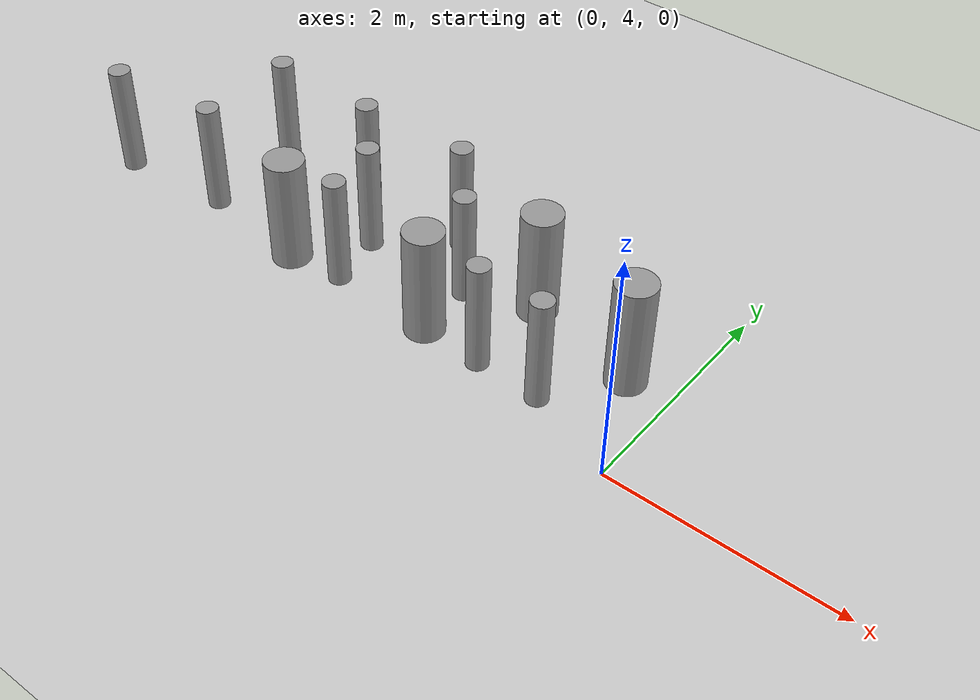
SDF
<sdf version="1.6">
 <world name="default">
  <model name="ground_plane">
   <static>1</static>
   <link name="link">
    <collision name="collision">
     <geometry><plane><normal>0 0 1</normal><size>100 100</size></plane></geometry>
     <surface><friction><ode><mu>100</mu><mu2>50</mu2></ode></friction></surface>
    </collision>
    <visual name="visual">
     <cast_shadows>0</cast_shadows>
     <geometry><plane><normal>0 0 1</normal><size>100 100</size></plane></geometry>
     <material>
      <script><uri>file://media/materials/scripts/gazebo.material</uri><name>Gazebo/Grey</name></script>
     </material>
    </visual>
   </link>
  </model>
  <model name="cyl_wall_clone_clone_3_clone_2_clone">
   <link name="link_0">
    <pose>-2.73893 -0.366465 0 0 -0 0</pose>
    <inertial>
     <mass>0.0374993</mass>
     <inertia>
      <ixx>0.00321281</ixx>
      <ixy>0</ixy>
      <ixz>0</ixz>
      <iyy>0.00321281</iyy>
      <iyz>0</iyz>
      <izz>0.000175774</izz>
     </inertia>
    </inertial>
    <visual name="visual">
     <geometry><cylinder><radius>0.0968661</radius><length>1</length></cylinder></geometry>
     <material>
      <lighting>1</lighting>
      <script><uri>file://media/materials/scripts/gazebo.material</uri><name>Gazebo/Grey</name></script>
      <ambient>0.3 0.3 0.3 1</ambient>
      <diffuse>0.7 0.7 0.7 1</diffuse>
      <specular>0.01 0.01 0.01 1</specular>
      <emissive>0 0 0 1</emissive>
     </material>
    </visual>
    <collision name="collision">
     <geometry><cylinder><radius>0.096866</radius><length>1</length></cylinder></geometry>
     <surface>
      <friction>
       <ode><mu>1</mu><mu2>1</mu2><fdir1>0 0 0</fdir1><slip1>0</slip1><slip2>0</slip2></ode>
       <torsional>
        <coefficient>1</coefficient>
        <patch_radius>0</patch_radius>
        <surface_radius>0</surface_radius>
        <use_patch_radius>1</use_patch_radius>
        <ode><slip>0</slip></ode>
       </torsional>
      </friction>
      <bounce><restitution_coefficient>0</restitution_coefficient><threshold>1e+06</threshold></bounce>
      <contact>
       <collide_without_contact>0</collide_without_contact>
       <collide_without_contact_bitmask>1</collide_without_contact_bitmask>
       <collide_bitmask>1</collide_bitmask>
       <ode>
        <soft_cfm>0</soft_cfm>
        <soft_erp>0.2</soft_erp>
        <kp>1e+13</kp>
        <kd>1</kd>
        <max_vel>0.01</max_vel>
        <min_depth>0</min_depth>
       </ode>
       <bullet>
        <split_impulse>1</split_impulse>
        <split_impulse_penetration_threshold>-0.01</split_impulse_penetration_threshold>
        <soft_cfm>0</soft_cfm>
        <soft_erp>0.2</soft_erp>
        <kp>1e+13</kp>
        <kd>1</kd>
       </bullet>
      </contact>
     </surface>
    </collision>
   </link>
   <link name="link_0_clone">
    <pose>-1.73893 0.61877 0 0 -0 0</pose>
    <inertial>
     <mass>0.0374993</mass>
     <inertia>
      <ixx>0.00321281</ixx>
      <ixy>0</ixy>
      <ixz>0</ixz>
      <iyy>0.00321281</iyy>
      <iyz>0</iyz>
      <izz>0.000175774</izz>
     </inertia>
    </inertial>
    <visual name="visual">
     <geometry><cylinder><radius>0.0968661</radius><length>1</length></cylinder></geometry>
     <material>
      <lighting>1</lighting>
      <script><uri>file://media/materials/scripts/gazebo.material</uri><name>Gazebo/Grey</name></script>
      <ambient>0.3 0.3 0.3 1</ambient>
      <diffuse>0.7 0.7 0.7 1</diffuse>
      <specular>0.01 0.01 0.01 1</specular>
      <emissive>0 0 0 1</emissive>
      <shader type="pixel"/>
     </material>
    </visual>
    <collision name="collision">
     <geometry><cylinder><radius>0.096866</radius><length>1</length></cylinder></geometry>
     <surface>
      <friction>
       <ode><mu>1</mu><mu2>1</mu2><fdir1>0 0 0</fdir1><slip1>0</slip1><slip2>0</slip2></ode>
       <torsional>
        <coefficient>1</coefficient>
        <patch_radius>0</patch_radius>
        <surface_radius>0</surface_radius>
        <use_patch_radius>1</use_patch_radius>
        <ode><slip>0</slip></ode>
       </torsional>
      </friction>
      <bounce><restitution_coefficient>0</restitution_coefficient><threshold>1e+06</threshold></bounce>
      <contact>
       <collide_without_contact>0</collide_without_contact>
       <collide_without_contact_bitmask>1</collide_without_contact_bitmask>
       <collide_bitmask>1</collide_bitmask>
       <ode>
        <soft_cfm>0</soft_cfm>
        <soft_erp>0.2</soft_erp>
        <kp>1e+13</kp>
        <kd>1</kd>
        <max_vel>0.01</max_vel>
        <min_depth>0</min_depth>
       </ode>
       <bullet>
        <split_impulse>1</split_impulse>
        <split_impulse_penetration_threshold>-0.01</split_impulse_penetration_threshold>
        <soft_cfm>0</soft_cfm>
        <soft_erp>0.2</soft_erp>
        <kp>1e+13</kp>
        <kd>1</kd>
       </bullet>
      </contact>
     </surface>
    </collision>
   </link>
   <link name="link_0_clone_clone">
    <pose>-0.327073 0.143919 0 0 -0 0</pose>
    <inertial>
     <mass>0.0374993</mass>
     <inertia>
      <ixx>0.00321281</ixx>
      <ixy>0</ixy>
      <ixz>0</ixz>
      <iyy>0.00321281</iyy>
      <iyz>0</iyz>
      <izz>0.000175774</izz>
     </inertia>
    </inertial>
    <visual name="visual">
     <geometry><cylinder><radius>0.0968661</radius><length>1</length></cylinder></geometry>
     <material>
      <lighting>1</lighting>
      <script><uri>file://media/materials/scripts/gazebo.material</uri><name>Gazebo/Grey</name></script>
      <ambient>0.3 0.3 0.3 1</ambient>
      <diffuse>0.7 0.7 0.7 1</diffuse>
      <specular>0.01 0.01 0.01 1</specular>
      <emissive>0 0 0 1</emissive>
      <shader type="pixel"/>
     </material>
    </visual>
    <collision name="collision">
     <geometry><cylinder><radius>0.096866</radius><length>1</length></cylinder></geometry>
     <surface>
      <friction>
       <ode><mu>1</mu><mu2>1</mu2><fdir1>0 0 0</fdir1><slip1>0</slip1><slip2>0</slip2></ode>
       <torsional>
        <coefficient>1</coefficient>
        <patch_radius>0</patch_radius>
        <surface_radius>0</surface_radius>
        <use_patch_radius>1</use_patch_radius>
        <ode><slip>0</slip></ode>
       </torsional>
      </friction>
      <bounce><restitution_coefficient>0</restitution_coefficient><threshold>1e+06</threshold></bounce>
      <contact>
       <collide_without_contact>0</collide_without_contact>
       <collide_without_contact_bitmask>1</collide_without_contact_bitmask>
       <collide_bitmask>1</collide_bitmask>
       <ode>
        <soft_cfm>0</soft_cfm>
        <soft_erp>0.2</soft_erp>
        <kp>1e+13</kp>
        <kd>1</kd>
        <max_vel>0.01</max_vel>
        <min_depth>0</min_depth>
       </ode>
       <bullet>
        <split_impulse>1</split_impulse>
        <split_impulse_penetration_threshold>-0.01</split_impulse_penetration_threshold>
        <soft_cfm>0</soft_cfm>
        <soft_erp>0.2</soft_erp>
        <kp>1e+13</kp>
        <kd>1</kd>
       </bullet>
      </contact>
     </surface>
    </collision>
   </link>
   <link name="link_0_clone_clone_0">
    <pose>1.26107 -0.419359 0 0 -0 0</pose>
    <inertial>
     <mass>0.0374993</mass>
     <inertia>
      <ixx>0.00321281</ixx>
      <ixy>0</ixy>
      <ixz>0</ixz>
      <iyy>0.00321281</iyy>
      <iyz>0</iyz>
      <izz>0.000175774</izz>
     </inertia>
    </inertial>
    <visual name="visual">
     <geometry><cylinder><radius>0.0968661</radius><length>1</length></cylinder></geometry>
     <material>
      <lighting>1</lighting>
      <script><uri>file://media/materials/scripts/gazebo.material</uri><name>Gazebo/Grey</name></script>
      <ambient>0.3 0.3 0.3 1</ambient>
      <diffuse>0.7 0.7 0.7 1</diffuse>
      <specular>0.01 0.01 0.01 1</specular>
      <emissive>0 0 0 1</emissive>
      <shader type="pixel"/>
     </material>
    </visual>
    <collision name="collision">
     <geometry><cylinder><radius>0.096866</radius><length>1</length></cylinder></geometry>
     <surface>
      <friction>
       <ode><mu>1</mu><mu2>1</mu2><fdir1>0 0 0</fdir1><slip1>0</slip1><slip2>0</slip2></ode>
       <torsional>
        <coefficient>1</coefficient>
        <patch_radius>0</patch_radius>
        <surface_radius>0</surface_radius>
        <use_patch_radius>1</use_patch_radius>
        <ode><slip>0</slip></ode>
       </torsional>
      </friction>
      <bounce><restitution_coefficient>0</restitution_coefficient><threshold>1e+06</threshold></bounce>
      <contact>
       <collide_without_contact>0</collide_without_contact>
       <collide_without_contact_bitmask>1</collide_without_contact_bitmask>
       <collide_bitmask>1</collide_bitmask>
       <ode>
        <soft_cfm>0</soft_cfm>
        <soft_erp>0.2</soft_erp>
        <kp>1e+13</kp>
        <kd>1</kd>
        <max_vel>0.01</max_vel>
        <min_depth>0</min_depth>
       </ode>
       <bullet>
        <split_impulse>1</split_impulse>
        <split_impulse_penetration_threshold>-0.01</split_impulse_penetration_threshold>
        <soft_cfm>0</soft_cfm>
        <soft_erp>0.2</soft_erp>
        <kp>1e+13</kp>
        <kd>1</kd>
       </bullet>
      </contact>
     </surface>
    </collision>
   </link>
   <link name="link_0_clone_clone_1">
    <pose>-1.73893 -0.277168 0 0 -0 0</pose>
    <inertial>
     <mass>0.0374993</mass>
     <inertia>
      <ixx>0.00321281</ixx>
      <ixy>0</ixy>
      <ixz>0</ixz>
      <iyy>0.00321281</iyy>
      <iyz>0</iyz>
      <izz>0.000175774</izz>
     </inertia>
    </inertial>
    <visual name="visual">
     <geometry><cylinder><radius>0.0968661</radius><length>1</length></cylinder></geometry>
     <material>
      <lighting>1</lighting>
      <script><uri>file://media/materials/scripts/gazebo.material</uri><name>Gazebo/Grey</name></script>
      <ambient>0.3 0.3 0.3 1</ambient>
      <diffuse>0.7 0.7 0.7 1</diffuse>
      <specular>0.01 0.01 0.01 1</specular>
      <emissive>0 0 0 1</emissive>
      <shader type="pixel"/>
     </material>
    </visual>
    <collision name="collision">
     <geometry><cylinder><radius>0.096866</radius><length>1</length></cylinder></geometry>
     <surface>
      <friction>
       <ode><mu>1</mu><mu2>1</mu2><fdir1>0 0 0</fdir1><slip1>0</slip1><slip2>0</slip2></ode>
       <torsional>
        <coefficient>1</coefficient>
        <patch_radius>0</patch_radius>
        <surface_radius>0</surface_radius>
        <use_patch_radius>1</use_patch_radius>
        <ode><slip>0</slip></ode>
       </torsional>
      </friction>
      <bounce><restitution_coefficient>0</restitution_coefficient><threshold>1e+06</threshold></bounce>
      <contact>
       <collide_without_contact>0</collide_without_contact>
       <collide_without_contact_bitmask>1</collide_without_contact_bitmask>
       <collide_bitmask>1</collide_bitmask>
       <ode>
        <soft_cfm>0</soft_cfm>
        <soft_erp>0.2</soft_erp>
        <kp>1e+13</kp>
        <kd>1</kd>
        <max_vel>0.01</max_vel>
        <min_depth>0</min_depth>
       </ode>
       <bullet>
        <split_impulse>1</split_impulse>
        <split_impulse_penetration_threshold>-0.01</split_impulse_penetration_threshold>
        <soft_cfm>0</soft_cfm>
        <soft_erp>0.2</soft_erp>
        <kp>1e+13</kp>
        <kd>1</kd>
       </bullet>
      </contact>
     </surface>
    </collision>
   </link>
   <link name="link_0_clone_clone_2">
    <pose>-0.738934 0.593961 0 0 -0 0</pose>
    <inertial>
     <mass>0.0374993</mass>
     <inertia>
      <ixx>0.00321281</ixx>
      <ixy>0</ixy>
      <ixz>0</ixz>
      <iyy>0.00321281</iyy>
      <iyz>0</iyz>
      <izz>0.000175774</izz>
     </inertia>
    </inertial>
    <visual name="visual">
     <geometry><cylinder><radius>0.0968661</radius><length>1</length></cylinder></geometry>
     <material>
      <lighting>1</lighting>
      <script><uri>file://media/materials/scripts/gazebo.material</uri><name>Gazebo/Grey</name></script>
      <ambient>0.3 0.3 0.3 1</ambient>
      <diffuse>0.7 0.7 0.7 1</diffuse>
      <specular>0.01 0.01 0.01 1</specular>
      <emissive>0 0 0 1</emissive>
      <shader type="pixel"/>
     </material>
    </visual>
    <collision name="collision">
     <geometry><cylinder><radius>0.096866</radius><length>1</length></cylinder></geometry>
     <surface>
      <friction>
       <ode><mu>1</mu><mu2>1</mu2><fdir1>0 0 0</fdir1><slip1>0</slip1><slip2>0</slip2></ode>
       <torsional>
        <coefficient>1</coefficient>
        <patch_radius>0</patch_radius>
        <surface_radius>0</surface_radius>
        <use_patch_radius>1</use_patch_radius>
        <ode><slip>0</slip></ode>
       </torsional>
      </friction>
      <bounce><restitution_coefficient>0</restitution_coefficient><threshold>1e+06</threshold></bounce>
      <contact>
       <collide_without_contact>0</collide_without_contact>
       <collide_without_contact_bitmask>1</collide_without_contact_bitmask>
       <collide_bitmask>1</collide_bitmask>
       <ode>
        <soft_cfm>0</soft_cfm>
        <soft_erp>0.2</soft_erp>
        <kp>1e+13</kp>
        <kd>1</kd>
        <max_vel>0.01</max_vel>
        <min_depth>0</min_depth>
       </ode>
       <bullet>
        <split_impulse>1</split_impulse>
        <split_impulse_penetration_threshold>-0.01</split_impulse_penetration_threshold>
        <soft_cfm>0</soft_cfm>
        <soft_erp>0.2</soft_erp>
        <kp>1e+13</kp>
        <kd>1</kd>
       </bullet>
      </contact>
     </surface>
    </collision>
   </link>
   <link name="link_0_clone_clone_3">
    <pose>0.261066 0.624849 0 0 -0 0</pose>
    <inertial>
     <mass>0.0374993</mass>
     <inertia>
      <ixx>0.00321281</ixx>
      <ixy>0</ixy>
      <ixz>0</ixz>
      <iyy>0.00321281</iyy>
      <iyz>0</iyz>
      <izz>0.000175774</izz>
     </inertia>
    </inertial>
    <visual name="visual">
     <geometry><cylinder><radius>0.0968661</radius><length>1</length></cylinder></geometry>
     <material>
      <lighting>1</lighting>
      <script><uri>file://media/materials/scripts/gazebo.material</uri><name>Gazebo/Grey</name></script>
      <ambient>0.3 0.3 0.3 1</ambient>
      <diffuse>0.7 0.7 0.7 1</diffuse>
      <specular>0.01 0.01 0.01 1</specular>
      <emissive>0 0 0 1</emissive>
      <shader type="pixel"/>
     </material>
    </visual>
    <collision name="collision">
     <geometry><cylinder><radius>0.096866</radius><length>1</length></cylinder></geometry>
     <surface>
      <friction>
       <ode><mu>1</mu><mu2>1</mu2><fdir1>0 0 0</fdir1><slip1>0</slip1><slip2>0</slip2></ode>
       <torsional>
        <coefficient>1</coefficient>
        <patch_radius>0</patch_radius>
        <surface_radius>0</surface_radius>
        <use_patch_radius>1</use_patch_radius>
        <ode><slip>0</slip></ode>
       </torsional>
      </friction>
      <bounce><restitution_coefficient>0</restitution_coefficient><threshold>1e+06</threshold></bounce>
      <contact>
       <collide_without_contact>0</collide_without_contact>
       <collide_without_contact_bitmask>1</collide_without_contact_bitmask>
       <collide_bitmask>1</collide_bitmask>
       <ode>
        <soft_cfm>0</soft_cfm>
        <soft_erp>0.2</soft_erp>
        <kp>1e+13</kp>
        <kd>1</kd>
        <max_vel>0.01</max_vel>
        <min_depth>0</min_depth>
       </ode>
       <bullet>
        <split_impulse>1</split_impulse>
        <split_impulse_penetration_threshold>-0.01</split_impulse_penetration_threshold>
        <soft_cfm>0</soft_cfm>
        <soft_erp>0.2</soft_erp>
        <kp>1e+13</kp>
        <kd>1</kd>
       </bullet>
      </contact>
     </surface>
    </collision>
   </link>
   <link name="link_0_clone_clone_4">
    <pose>-0.239049 -0.353105 0 0 -0 0</pose>
    <inertial>
     <mass>0.0374993</mass>
     <inertia>
      <ixx>0.00321281</ixx>
      <ixy>0</ixy>
      <ixz>0</ixz>
      <iyy>0.00321281</iyy>
      <iyz>0</iyz>
      <izz>0.000175774</izz>
     </inertia>
    </inertial>
    <visual name="visual">
     <geometry><cylinder><radius>0.0968661</radius><length>1</length></cylinder></geometry>
     <material>
      <lighting>1</lighting>
      <script><uri>file://media/materials/scripts/gazebo.material</uri><name>Gazebo/Grey</name></script>
      <ambient>0.3 0.3 0.3 1</ambient>
      <diffuse>0.7 0.7 0.7 1</diffuse>
      <specular>0.01 0.01 0.01 1</specular>
      <emissive>0 0 0 1</emissive>
      <shader type="pixel"/>
     </material>
    </visual>
    <collision name="collision">
     <geometry><cylinder><radius>0.096866</radius><length>1</length></cylinder></geometry>
     <surface>
      <friction>
       <ode><mu>1</mu><mu2>1</mu2><fdir1>0 0 0</fdir1><slip1>0</slip1><slip2>0</slip2></ode>
       <torsional>
        <coefficient>1</coefficient>
        <patch_radius>0</patch_radius>
        <surface_radius>0</surface_radius>
        <use_patch_radius>1</use_patch_radius>
        <ode><slip>0</slip></ode>
       </torsional>
      </friction>
      <bounce><restitution_coefficient>0</restitution_coefficient><threshold>1e+06</threshold></bounce>
      <contact>
       <collide_without_contact>0</collide_without_contact>
       <collide_without_contact_bitmask>1</collide_without_contact_bitmask>
       <collide_bitmask>1</collide_bitmask>
       <ode>
        <soft_cfm>0</soft_cfm>
        <soft_erp>0.2</soft_erp>
        <kp>1e+13</kp>
        <kd>1</kd>
        <max_vel>0.01</max_vel>
        <min_depth>0</min_depth>
       </ode>
       <bullet>
        <split_impulse>1</split_impulse>
        <split_impulse_penetration_threshold>-0.01</split_impulse_penetration_threshold>
        <soft_cfm>0</soft_cfm>
        <soft_erp>0.2</soft_erp>
        <kp>1e+13</kp>
        <kd>1</kd>
       </bullet>
      </contact>
     </surface>
    </collision>
   </link>
   <link name="link_0_clone_clone_5">
    <pose>0.672792 0.143919 0 0 -0 0</pose>
    <inertial>
     <mass>0.0374993</mass>
     <inertia>
      <ixx>0.00321281</ixx>
      <ixy>0</ixy>
      <ixz>0</ixz>
      <iyy>0.00321281</iyy>
      <iyz>0</iyz>
      <izz>0.000175774</izz>
     </inertia>
    </inertial>
    <visual name="visual">
     <geometry><cylinder><radius>0.0968661</radius><length>1</length></cylinder></geometry>
     <material>
      <lighting>1</lighting>
      <script><uri>file://media/materials/scripts/gazebo.material</uri><name>Gazebo/Grey</name></script>
      <ambient>0.3 0.3 0.3 1</ambient>
      <diffuse>0.7 0.7 0.7 1</diffuse>
      <specular>0.01 0.01 0.01 1</specular>
      <emissive>0 0 0 1</emissive>
      <shader type="pixel"/>
     </material>
    </visual>
    <collision name="collision">
     <geometry><cylinder><radius>0.096866</radius><length>1</length></cylinder></geometry>
     <surface>
      <friction>
       <ode><mu>1</mu><mu2>1</mu2><fdir1>0 0 0</fdir1><slip1>0</slip1><slip2>0</slip2></ode>
       <torsional>
        <coefficient>1</coefficient>
        <patch_radius>0</patch_radius>
        <surface_radius>0</surface_radius>
        <use_patch_radius>1</use_patch_radius>
        <ode><slip>0</slip></ode>
       </torsional>
      </friction>
      <bounce><restitution_coefficient>0</restitution_coefficient><threshold>1e+06</threshold></bounce>
      <contact>
       <collide_without_contact>0</collide_without_contact>
       <collide_without_contact_bitmask>1</collide_without_contact_bitmask>
       <collide_bitmask>1</collide_bitmask>
       <ode>
        <soft_cfm>0</soft_cfm>
        <soft_erp>0.2</soft_erp>
        <kp>1e+13</kp>
        <kd>1</kd>
        <max_vel>0.01</max_vel>
        <min_depth>0</min_depth>
       </ode>
       <bullet>
        <split_impulse>1</split_impulse>
        <split_impulse_penetration_threshold>-0.01</split_impulse_penetration_threshold>
        <soft_cfm>0</soft_cfm>
        <soft_erp>0.2</soft_erp>
        <kp>1e+13</kp>
        <kd>1</kd>
       </bullet>
      </contact>
     </surface>
    </collision>
   </link>
   <link name="link_0_clone_clone_6">
    <pose>1.84596 -0.433423 0 0 -0 0</pose>
    <inertial>
     <mass>0.0374993</mass>
     <inertia>
      <ixx>0.00321281</ixx>
      <ixy>0</ixy>
      <ixz>0</ixz>
      <iyy>0.00321281</iyy>
      <iyz>0</iyz>
      <izz>0.000175774</izz>
     </inertia>
    </inertial>
    <visual name="visual">
     <geometry><cylinder><radius>0.0968661</radius><length>1</length></cylinder></geometry>
     <material>
      <lighting>1</lighting>
      <script><uri>file://media/materials/scripts/gazebo.material</uri><name>Gazebo/Grey</name></script>
      <ambient>0.3 0.3 0.3 1</ambient>
      <diffuse>0.7 0.7 0.7 1</diffuse>
      <specular>0.01 0.01 0.01 1</specular>
      <emissive>0 0 0 1</emissive>
      <shader type="pixel"/>
     </material>
    </visual>
    <collision name="collision">
     <geometry><cylinder><radius>0.096866</radius><length>1</length></cylinder></geometry>
     <surface>
      <friction>
       <ode><mu>1</mu><mu2>1</mu2><fdir1>0 0 0</fdir1><slip1>0</slip1><slip2>0</slip2></ode>
       <torsional>
        <coefficient>1</coefficient>
        <patch_radius>0</patch_radius>
        <surface_radius>0</surface_radius>
        <use_patch_radius>1</use_patch_radius>
        <ode><slip>0</slip></ode>
       </torsional>
      </friction>
      <bounce><restitution_coefficient>0</restitution_coefficient><threshold>1e+06</threshold></bounce>
      <contact>
       <collide_without_contact>0</collide_without_contact>
       <collide_without_contact_bitmask>1</collide_without_contact_bitmask>
       <collide_bitmask>1</collide_bitmask>
       <ode>
        <soft_cfm>0</soft_cfm>
        <soft_erp>0.2</soft_erp>
        <kp>1e+13</kp>
        <kd>1</kd>
        <max_vel>0.01</max_vel>
        <min_depth>0</min_depth>
       </ode>
       <bullet>
        <split_impulse>1</split_impulse>
        <split_impulse_penetration_threshold>-0.01</split_impulse_penetration_threshold>
        <soft_cfm>0</soft_cfm>
        <soft_erp>0.2</soft_erp>
        <kp>1e+13</kp>
        <kd>1</kd>
       </bullet>
      </contact>
     </surface>
    </collision>
   </link>
   <link name="link_1">
    <pose>-0.738934 -0.397931 0 0 -0 0</pose>
    <inertial>
     <mass>0.117398</mass>
     <inertia>
      <ixx>0.0106445</ixx>
      <ixy>0</ixy>
      <ixz>0</ixz>
      <iyy>0.0106445</iyy>
      <iyz>0</iyz>
      <izz>0.00172278</izz>
     </inertia>
    </inertial>
    <visual name="visual">
     <geometry><cylinder><radius>0.171317</radius><length>1</length></cylinder></geometry>
     <material>
      <lighting>1</lighting>
      <script><uri>file://media/materials/scripts/gazebo.material</uri><name>Gazebo/Grey</name></script>
      <ambient>0.3 0.3 0.3 1</ambient>
      <diffuse>0.7 0.7 0.7 1</diffuse>
      <specular>0.01 0.01 0.01 1</specular>
      <emissive>0 0 0 1</emissive>
     </material>
    </visual>
    <collision name="collision">
     <geometry><cylinder><radius>0.171317</radius><length>1</length></cylinder></geometry>
     <surface>
      <friction>
       <ode><mu>1</mu><mu2>1</mu2><fdir1>0 0 0</fdir1><slip1>0</slip1><slip2>0</slip2></ode>
       <torsional>
        <coefficient>1</coefficient>
        <patch_radius>0</patch_radius>
        <surface_radius>0</surface_radius>
        <use_patch_radius>1</use_patch_radius>
        <ode><slip>0</slip></ode>
       </torsional>
      </friction>
      <bounce><restitution_coefficient>0</restitution_coefficient><threshold>1e+06</threshold></bounce>
      <contact>
       <collide_without_contact>0</collide_without_contact>
       <collide_without_contact_bitmask>1</collide_without_contact_bitmask>
       <collide_bitmask>1</collide_bitmask>
       <ode>
        <soft_cfm>0</soft_cfm>
        <soft_erp>0.2</soft_erp>
        <kp>1e+13</kp>
        <kd>1</kd>
        <max_vel>0.01</max_vel>
        <min_depth>0</min_depth>
       </ode>
       <bullet>
        <split_impulse>1</split_impulse>
        <split_impulse_penetration_threshold>-0.01</split_impulse_penetration_threshold>
        <soft_cfm>0</soft_cfm>
        <soft_erp>0.2</soft_erp>
        <kp>1e+13</kp>
        <kd>1</kd>
       </bullet>
      </contact>
     </surface>
    </collision>
   </link>
   <link name="link_1_clone">
    <pose>0.697784 -0.380861 0 0 -0 0</pose>
    <inertial>
     <mass>0.117398</mass>
     <inertia>
      <ixx>0.0106445</ixx>
      <ixy>0</ixy>
      <ixz>0</ixz>
      <iyy>0.0106445</iyy>
      <iyz>0</iyz>
      <izz>0.00172278</izz>
     </inertia>
    </inertial>
    <visual name="visual">
     <geometry><cylinder><radius>0.171317</radius><length>1</length></cylinder></geometry>
     <material>
      <lighting>1</lighting>
      <script><uri>file://media/materials/scripts/gazebo.material</uri><name>Gazebo/Grey</name></script>
      <ambient>0.3 0.3 0.3 1</ambient>
      <diffuse>0.7 0.7 0.7 1</diffuse>
      <specular>0.01 0.01 0.01 1</specular>
      <emissive>0 0 0 1</emissive>
      <shader type="pixel"/>
     </material>
    </visual>
    <collision name="collision">
     <geometry><cylinder><radius>0.171317</radius><length>1</length></cylinder></geometry>
     <surface>
      <friction>
       <ode><mu>1</mu><mu2>1</mu2><fdir1>0 0 0</fdir1><slip1>0</slip1><slip2>0</slip2></ode>
       <torsional>
        <coefficient>1</coefficient>
        <patch_radius>0</patch_radius>
        <surface_radius>0</surface_radius>
        <use_patch_radius>1</use_patch_radius>
        <ode><slip>0</slip></ode>
       </torsional>
      </friction>
      <bounce><restitution_coefficient>0</restitution_coefficient><threshold>1e+06</threshold></bounce>
      <contact>
       <collide_without_contact>0</collide_without_contact>
       <collide_without_contact_bitmask>1</collide_without_contact_bitmask>
       <collide_bitmask>1</collide_bitmask>
       <ode>
        <soft_cfm>0</soft_cfm>
        <soft_erp>0.2</soft_erp>
        <kp>1e+13</kp>
        <kd>1</kd>
        <max_vel>0.01</max_vel>
        <min_depth>0</min_depth>
       </ode>
       <bullet>
        <split_impulse>1</split_impulse>
        <split_impulse_penetration_threshold>-0.01</split_impulse_penetration_threshold>
        <soft_cfm>0</soft_cfm>
        <soft_erp>0.2</soft_erp>
        <kp>1e+13</kp>
        <kd>1</kd>
       </bullet>
      </contact>
     </surface>
    </collision>
   </link>
   <link name="link_1_clone_0">
    <pose>1.26107 0.358974 0 0 -0 0</pose>
    <inertial>
     <mass>0.117398</mass>
     <inertia>
      <ixx>0.0106445</ixx>
      <ixy>0</ixy>
      <ixz>0</ixz>
      <iyy>0.0106445</iyy>
      <iyz>0</iyz>
      <izz>0.00172278</izz>
     </inertia>
    </inertial>
    <visual name="visual">
     <geometry><cylinder><radius>0.171317</radius><length>1</length></cylinder></geometry>
     <material>
      <lighting>1</lighting>
      <script><uri>file://media/materials/scripts/gazebo.material</uri><name>Gazebo/Grey</name></script>
      <ambient>0.3 0.3 0.3 1</ambient>
      <diffuse>0.7 0.7 0.7 1</diffuse>
      <specular>0.01 0.01 0.01 1</specular>
      <emissive>0 0 0 1</emissive>
      <shader type="pixel"/>
     </material>
    </visual>
    <collision name="collision">
     <geometry><cylinder><radius>0.171317</radius><length>1</length></cylinder></geometry>
     <surface>
      <friction>
       <ode><mu>1</mu><mu2>1</mu2><fdir1>0 0 0</fdir1><slip1>0</slip1><slip2>0</slip2></ode>
       <torsional>
        <coefficient>1</coefficient>
        <patch_radius>0</patch_radius>
        <surface_radius>0</surface_radius>
        <use_patch_radius>1</use_patch_radius>
        <ode><slip>0</slip></ode>
       </torsional>
      </friction>
      <bounce><restitution_coefficient>0</restitution_coefficient><threshold>1e+06</threshold></bounce>
      <contact>
       <collide_without_contact>0</collide_without_contact>
       <collide_without_contact_bitmask>1</collide_without_contact_bitmask>
       <collide_bitmask>1</collide_bitmask>
       <ode>
        <soft_cfm>0</soft_cfm>
        <soft_erp>0.2</soft_erp>
        <kp>1e+13</kp>
        <kd>1</kd>
        <max_vel>0.01</max_vel>
        <min_depth>0</min_depth>
       </ode>
       <bullet>
        <split_impulse>1</split_impulse>
        <split_impulse_penetration_threshold>-0.01</split_impulse_penetration_threshold>
        <soft_cfm>0</soft_cfm>
        <soft_erp>0.2</soft_erp>
        <kp>1e+13</kp>
        <kd>1</kd>
       </bullet>
      </contact>
     </surface>
    </collision>
   </link>
   <link name="link_1_clone_1">
    <pose>2.26107 0.143919 0 0 -0 0</pose>
    <inertial>
     <mass>0.117398</mass>
     <inertia>
      <ixx>0.0106445</ixx>
      <ixy>0</ixy>
      <ixz>0</ixz>
      <iyy>0.0106445</iyy>
      <iyz>0</iyz>
      <izz>0.00172278</izz>
     </inertia>
    </inertial>
    <visual name="visual">
     <geometry><cylinder><radius>0.171317</radius><length>1</length></cylinder></geometry>
     <material>
      <lighting>1</lighting>
      <script><uri>file://media/materials/scripts/gazebo.material</uri><name>Gazebo/Grey</name></script>
      <ambient>0.3 0.3 0.3 1</ambient>
      <diffuse>0.7 0.7 0.7 1</diffuse>
      <specular>0.01 0.01 0.01 1</specular>
      <emissive>0 0 0 1</emissive>
      <shader type="pixel"/>
     </material>
    </visual>
    <collision name="collision">
     <geometry><cylinder><radius>0.171317</radius><length>1</length></cylinder></geometry>
     <surface>
      <friction>
       <ode><mu>1</mu><mu2>1</mu2><fdir1>0 0 0</fdir1><slip1>0</slip1><slip2>0</slip2></ode>
       <torsional>
        <coefficient>1</coefficient>
        <patch_radius>0</patch_radius>
        <surface_radius>0</surface_radius>
        <use_patch_radius>1</use_patch_radius>
        <ode><slip>0</slip></ode>
       </torsional>
      </friction>
      <bounce><restitution_coefficient>0</restitution_coefficient><threshold>1e+06</threshold></bounce>
      <contact>
       <collide_without_contact>0</collide_without_contact>
       <collide_without_contact_bitmask>1</collide_without_contact_bitmask>
       <collide_bitmask>1</collide_bitmask>
       <ode>
        <soft_cfm>0</soft_cfm>
        <soft_erp>0.2</soft_erp>
        <kp>1e+13</kp>
        <kd>1</kd>
        <max_vel>0.01</max_vel>
        <min_depth>0</min_depth>
       </ode>
       <bullet>
        <split_impulse>1</split_impulse>
        <split_impulse_penetration_threshold>-0.01</split_impulse_penetration_threshold>
        <soft_cfm>0</soft_cfm>
        <soft_erp>0.2</soft_erp>
        <kp>1e+13</kp>
        <kd>1</kd>
       </bullet>
      </contact>
     </surface>
    </collision>
   </link>
   <static>1</static>
   <pose>-2.6542 4.74504 0.5 0 -0 0</pose>
  </model>
 </world>
</sdf>
